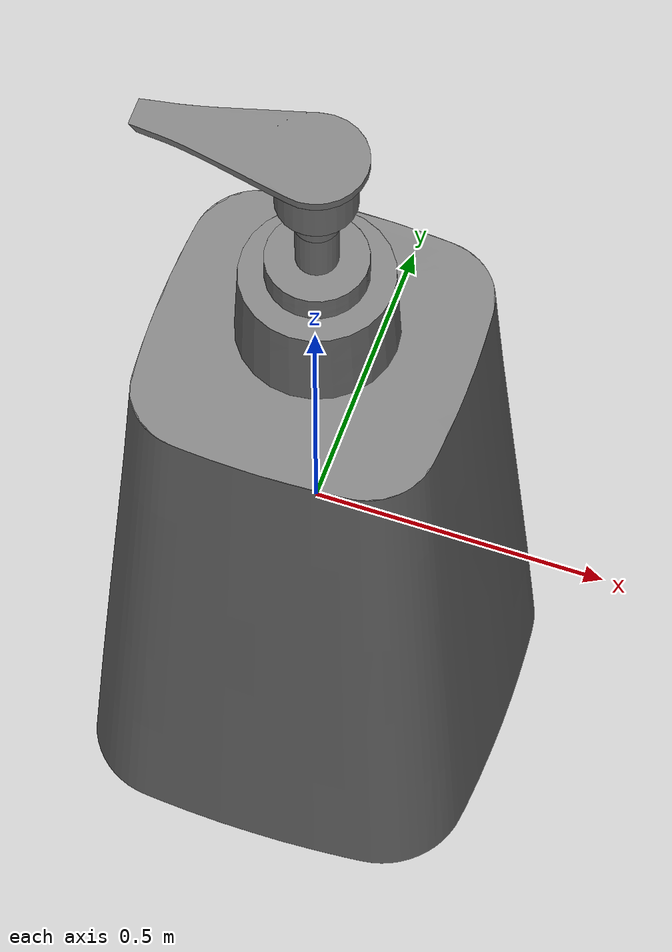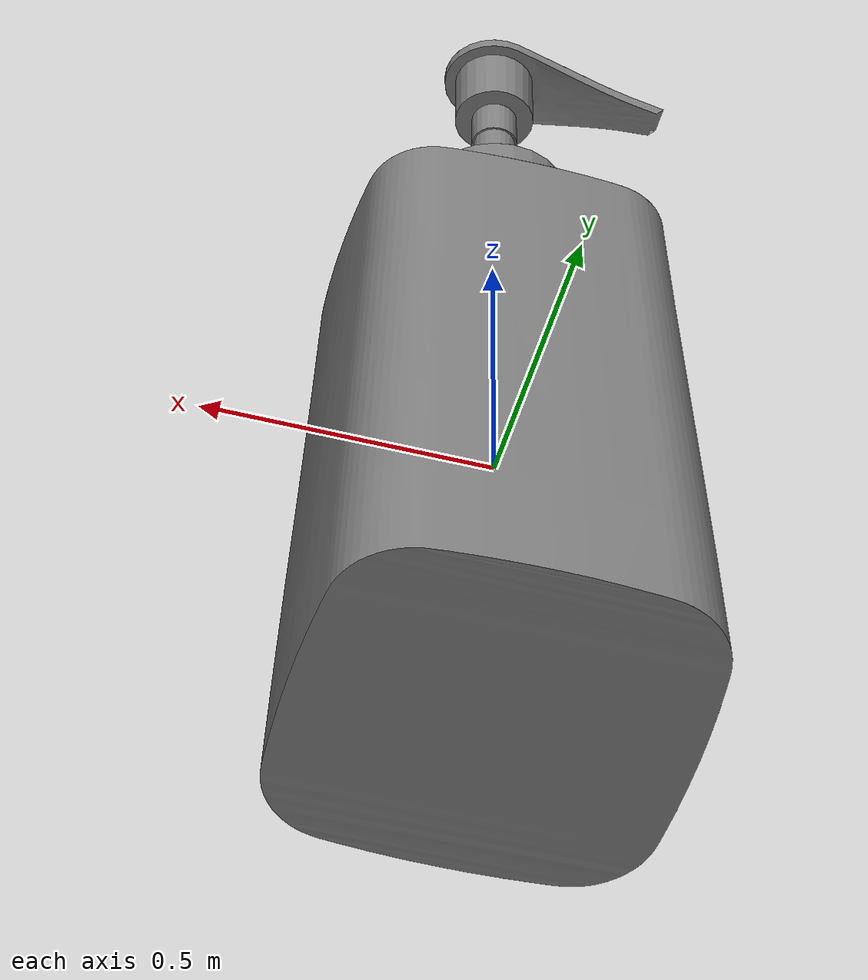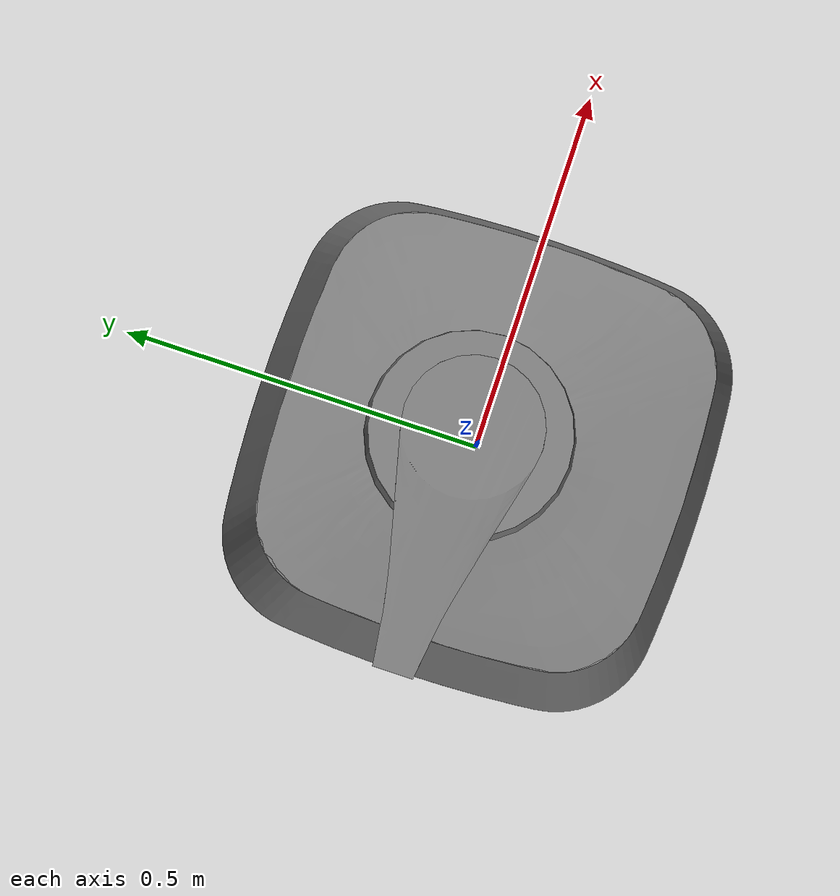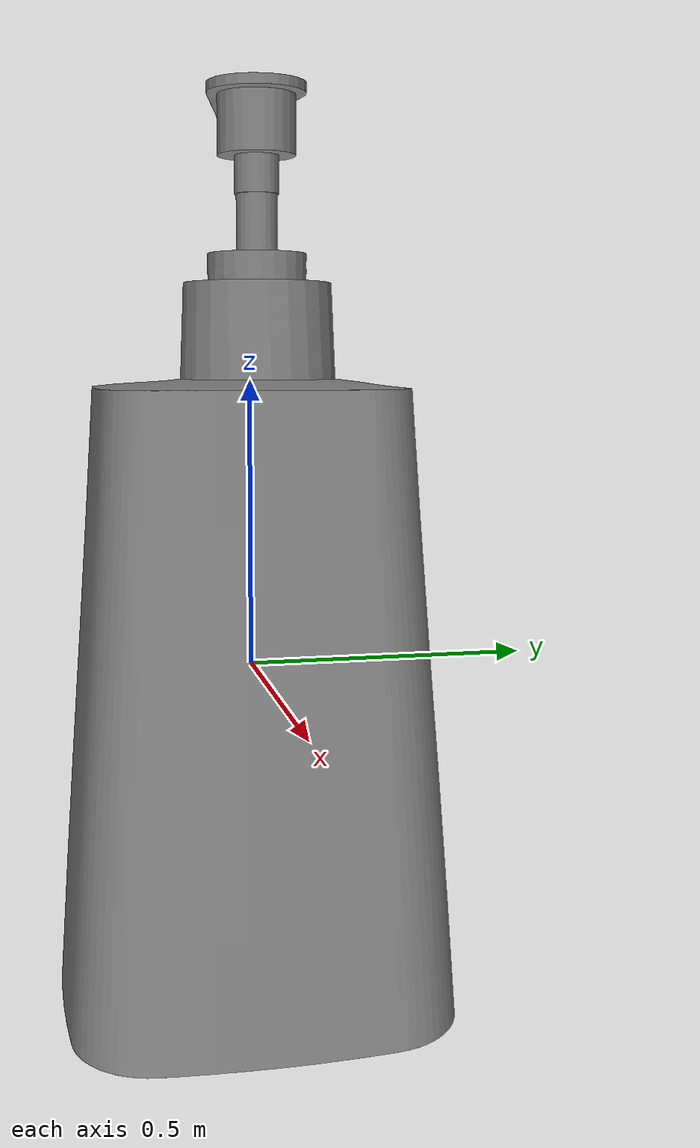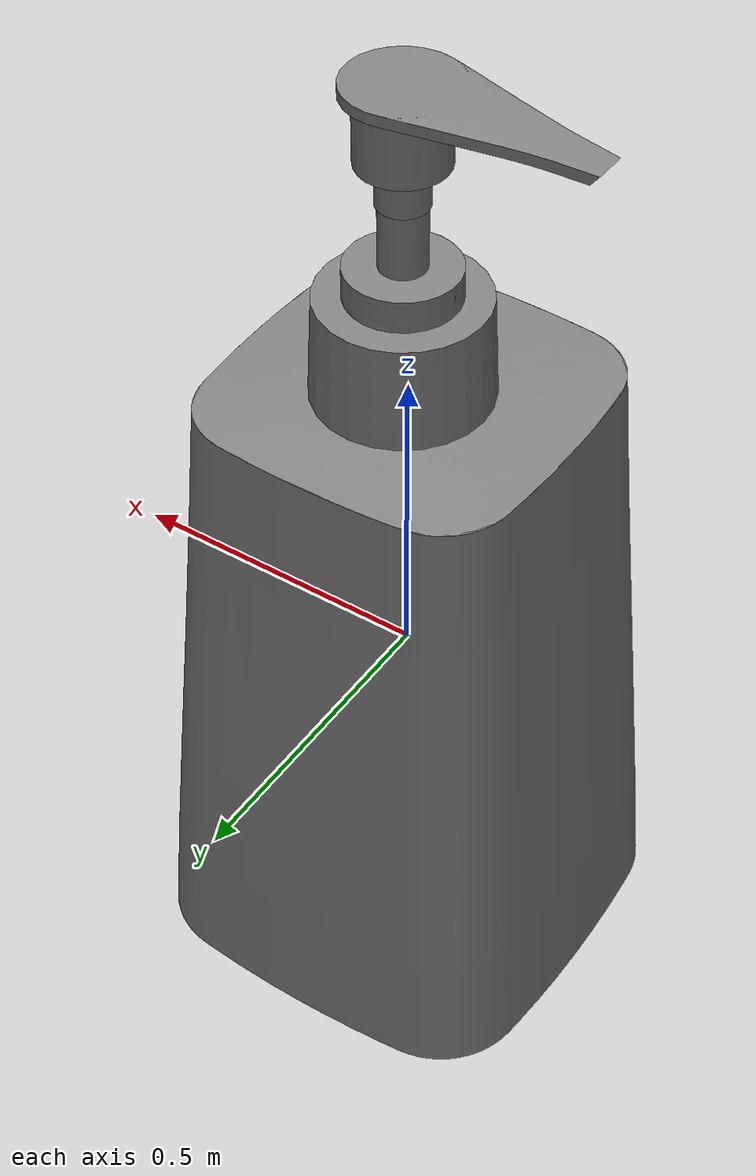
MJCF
<?xml version='1.0' encoding='UTF-8'?>
<mujoco model="partnet_2cb950b9-43d6-4d7d-8352-2f70c936dd6a">
  <compiler angle="radian"/>
  <asset>
    <mesh name="original_12" content_type="model/obj" file="textured_objs/original_12.obj"/>
    <mesh name="original_13" content_type="model/obj" file="textured_objs/original_13.obj"/>
    <mesh name="original_14" content_type="model/obj" file="textured_objs/original_14.obj"/>
    <mesh name="original_15" content_type="model/obj" file="textured_objs/original_15.obj"/>
    <mesh name="original_7" content_type="model/obj" file="textured_objs/original_7.obj"/>
    <mesh name="original_9" content_type="model/obj" file="textured_objs/original_9.obj"/>
    <mesh name="original_11" content_type="model/obj" file="textured_objs/original_11.obj"/>
    <mesh name="original_10" content_type="model/obj" file="textured_objs/original_10.obj"/>
    <mesh name="original_4" content_type="model/obj" file="textured_objs/original_4.obj"/>
    <mesh name="original_3" content_type="model/obj" file="textured_objs/original_3.obj"/>
    <mesh name="original_2" content_type="model/obj" file="textured_objs/original_2.obj"/>
    <mesh name="original_5" content_type="model/obj" file="textured_objs/original_5.obj"/>
    <mesh name="original_6" content_type="model/obj" file="textured_objs/original_6.obj"/>
    <mesh name="original_1" content_type="model/obj" file="textured_objs/original_1.obj"/>
  </asset>
  <worldbody>
    <body name="base">
      <body name="link_2" quat="0.5 0.5 -0.5 -0.5">
        <geom type="mesh" mesh="original_4"/>
        <geom type="mesh" mesh="original_3"/>
        <geom type="mesh" mesh="original_2"/>
        <geom type="mesh" mesh="original_5"/>
        <geom type="mesh" mesh="original_6"/>
        <geom type="mesh" mesh="original_1"/>
        <body name="link_1_helper" pos="-0.01322 0 -0.000173422">
          <inertial pos="0 0 0" mass="1e-06" diaginertia="1e-10 1e-10 1e-10"/>
          <joint name="joint_4" pos="0 0 0" axis="0 1 0" type="slide" range="0 0.01"/>
          <body name="link_1">
            <joint name="joint_1" pos="0 0 0" axis="0 1 0"/>
            <geom pos="0.01322 0 0.000173422" quat="1 0 0 0" type="mesh" mesh="original_7"/>
            <geom pos="0.01322 0 0.000173422" quat="1 0 0 0" type="mesh" mesh="original_9"/>
            <geom pos="0.01322 0 0.000173422" quat="1 0 0 0" type="mesh" mesh="original_11"/>
            <geom pos="0.01322 0 0.000173422" quat="1 0 0 0" type="mesh" mesh="original_10"/>
            <body name="link_0_helper" pos="-8.29428e-08 0 -4.29551e-07">
              <inertial pos="0 0 0" mass="1e-06" diaginertia="1e-10 1e-10 1e-10"/>
              <joint name="joint_3" pos="0 0 0" axis="0 -1 0" type="slide" range="0 0.1"/>
              <body name="link_0">
                <joint name="joint_0" pos="0 0 0" axis="0 1 0"/>
                <geom pos="0.0132201 0 0.000173852" quat="1 0 0 0" type="mesh" mesh="original_12"/>
                <geom pos="0.0132201 0 0.000173852" quat="1 0 0 0" type="mesh" mesh="original_13"/>
                <geom pos="0.0132201 0 0.000173852" quat="1 0 0 0" type="mesh" mesh="original_14"/>
                <geom pos="0.0132201 0 0.000173852" quat="1 0 0 0" type="mesh" mesh="original_15"/>
              </body>
            </body>
          </body>
        </body>
      </body>
    </body>
  </worldbody>
</mujoco>
